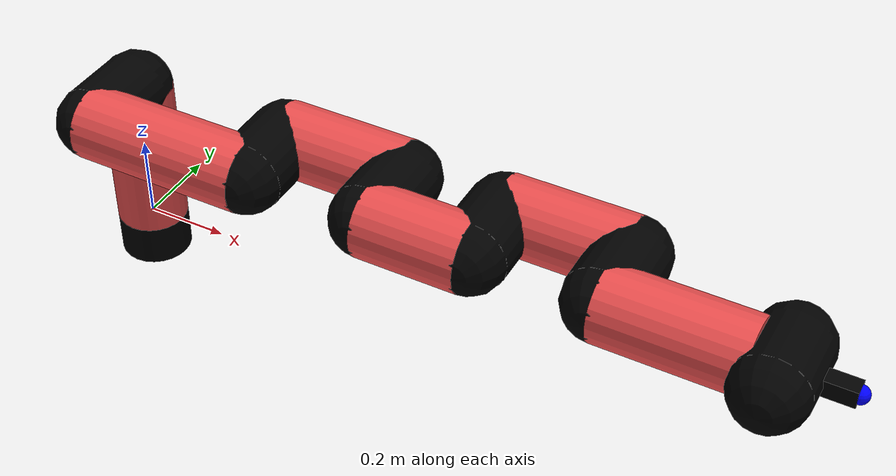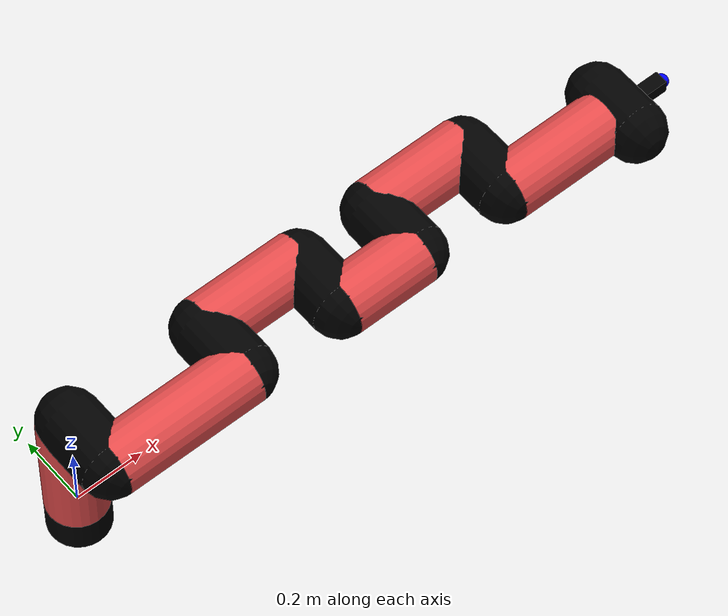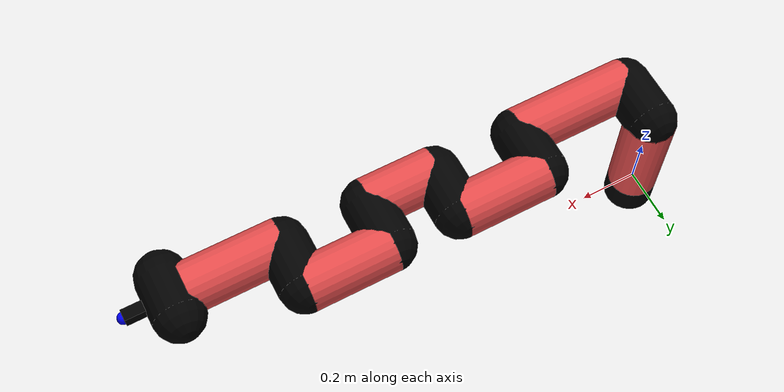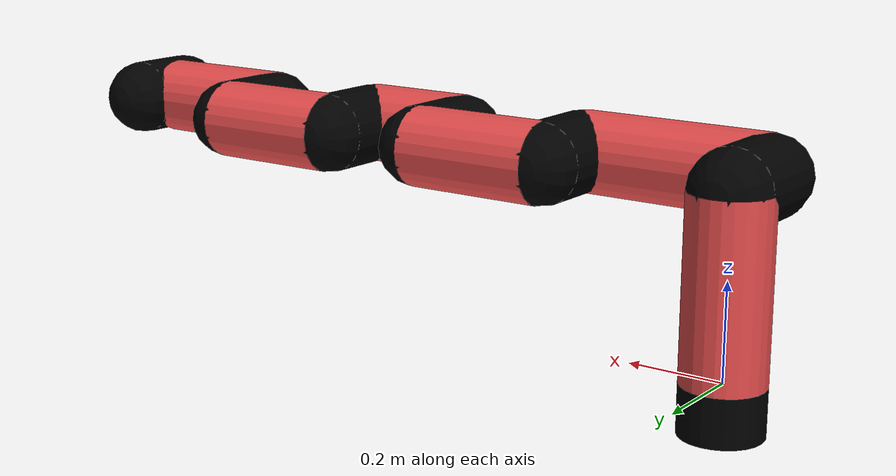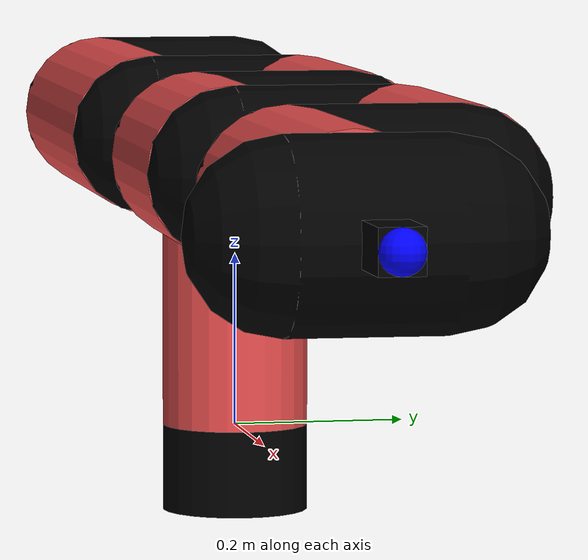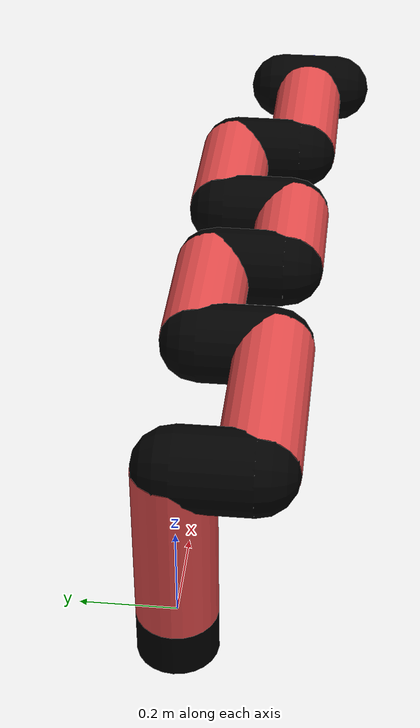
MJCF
<mujoco model="manipulator">
		<compiler angle="degree" coordinate="local" inertiafromgeom="auto" meshdir="meshes/"/>
		<option gravity="0 0 0" integrator="RK4" iterations="30" timestep="0.01"/>

		<default>
		<joint armature="1" limited="true" stiffness="10" damping="15" frictionloss="5.0"/>
		<geom conaffinity="1" condim="3" contype="1" friction=".5 .1 .1" margin="0.002"/>
		<motor ctrllimited="true"/>
		<position ctrllimited="true"/>
		</default>

		<asset>
		<texture builtin="gradient" height="100" rgb1="1.0 1.0 1.0" rgb2="1.0 1.0 1.0" type="skybox" width="100"/>
		<texture builtin="flat" height="32" name="arm_tex" rgb1="0.9 0.3 0.3" type="2d" width="32"/>
		<texture builtin="flat" height="32" name="gripper_tex" rgb1="0.0 0.0 0.0" type="cube" width="32"/>

		<material name="arm_mat" shininess="0.1" specular="0.1" texture="arm_tex"/>
		<material name="gripper_mat" shininess="1" specular="1" texture="gripper_tex"/>
		</asset>

		<worldbody>
		<light cutoff="45" diffuse=".8 .8 .8" dir="0 0.16 -1" directional="false" name="light" pos="0 -2.0 8.0" specular="0.3 0.3 0.3"/>

		<body name="base_link" pos="0 0 -0.1">
		<geom fromto="0 0 0 0 0 0.1" material="arm_mat" name="base_link" rgba="0.0 0.0 0.0 1" size="0.085" type="cylinder"/>
		</body>

		<body name="l1" pos="0 0 0">
<geom fromto="0 0 0 0 0 0.37" material="arm_mat" name="l1" rgba="0.9 0.3 0.3 1" size="0.085" type="cylinder"/>
<geom fromto="0 0 0.37 0 -0.16 0.37" material="arm_mat" name="l1_ex" rgba="0.0 0.0 0.0 1" size="0.085" type="capsule"/>
<joint axis="0 0 1" name="j1" pos="0 0 0" range="-90 90" damping="30.28" frictionloss="11.43"/>

<body name="l2" pos="0 -0.16 0.37">
<geom fromto="0 0 0 0.41 0 0" material="arm_mat" name="l2" rgba="0.9 0.3 0.3 1" size="0.085" type="cylinder"/>
<geom fromto="0.41 0 0 0.41 0.16 0" material="arm_mat" name="l2_ex" rgba="0.0 0.0 0.0 1" size="0.085" type="capsule"/>
<joint axis="0.0 1.0 0.0" name="j2" pos="0 0 0" range="-90 60" damping="32.97" frictionloss="11.24"/>

<body name="l3" pos="0.41 0.16 0">
<geom fromto="0 0 0 0.3 0 0" material="arm_mat" name="l3" rgba="0.9 0.3 0.3 1" size="0.085" type="cylinder"/>
<geom fromto="0.3 0 0 0.3 -0.16 0" material="arm_mat" name="l3_ex" rgba="0.0 0.0 0.0 1" size="0.085" type="capsule"/>
<joint axis="0.0 1.0 0.0" name="j3" pos="0 0 0" range="-30 60" damping="23.23" frictionloss="11.65"/>

<body name="l4" pos="0.3 -0.16 0">
<geom fromto="0 0 0 0.24 0 0" material="arm_mat" name="l4" rgba="0.9 0.3 0.3 1" size="0.085" type="cylinder"/>
<geom fromto="0.24 0 0 0.24 0.16 0" material="arm_mat" name="l4_ex" rgba="0.0 0.0 0.0 1" size="0.085" type="capsule"/>
<joint axis="0.0 1.0 0.0" name="j4" pos="0 0 0" range="-30 60" damping="23.14" frictionloss="9.66"/>

<body name="l5" pos="0.24 0.16 0">
<geom fromto="0 0 0 0.29 0 0" material="arm_mat" name="l5" rgba="0.9 0.3 0.3 1" size="0.085" type="cylinder"/>
<geom fromto="0.29 0 0 0.29 -0.16 0" material="arm_mat" name="l5_ex" rgba="0.0 0.0 0.0 1" size="0.085" type="capsule"/>
<joint axis="0.0 1.0 0.0" name="j5" pos="0 0 0" range="-30 60" damping="34.77" frictionloss="11.9"/>

<body name="l6" pos="0.29 -0.16 0">
<geom fromto="0 0 0 0.32 0 0" material="arm_mat" name="l6" rgba="0.9 0.3 0.3 1" size="0.085" type="cylinder"/>
<joint axis="0.0 1.0 0.0" name="j6" pos="0 0 0" range="-30 60" damping="32.16" frictionloss="9.36"/>

<body name="gripper" pos="0.32 0 0">
<geom fromto="0.05 -0.07 0 0.05 0.07 0" material="gripper_mat" name="gripper" rgba="0.0 0.0 0.0 1" size="0.085" type="capsule"/><joint axis="1 0 0" name="j7" pos="0 0 0" range="-90 90" damping="15" frictionloss="5.0"/><body name="finger" pos="0.1 0 0">
<geom fromto="0 0.0 0 0.1 0.0 0" material="gripper_mat" name="finger" rgba="0.0 0.0 0.0 1" size="0.020 0.06 0.06" type="box"/>
</body>
<site name="current" pos="0.2 0. 0.0" rgba="0. 0. 1.0 1" size="0.02" type="sphere"/>
</body>
</body>
</body>
</body>
</body>
</body>
</body>
</worldbody>
<actuator>
<motor ctrllimited="true" ctrlrange="-1.0 1.0" joint="j1" gear="85.67"/>
<motor ctrllimited="true" ctrlrange="-1.0 1.0" joint="j2" gear="88.67"/>
<motor ctrllimited="true" ctrlrange="-1.0 1.0" joint="j3" gear="98.74"/>
<motor ctrllimited="true" ctrlrange="-1.0 1.0" joint="j4" gear="89.48"/>
<motor ctrllimited="true" ctrlrange="-1.0 1.0" joint="j5" gear="83.82"/>
<motor ctrllimited="true" ctrlrange="-1.0 1.0" joint="j6" gear="68.14"/>
<motor ctrllimited="true" ctrlrange="-1.0 1.0" joint="j7" gear="80"/>
</actuator>
</mujoco>
